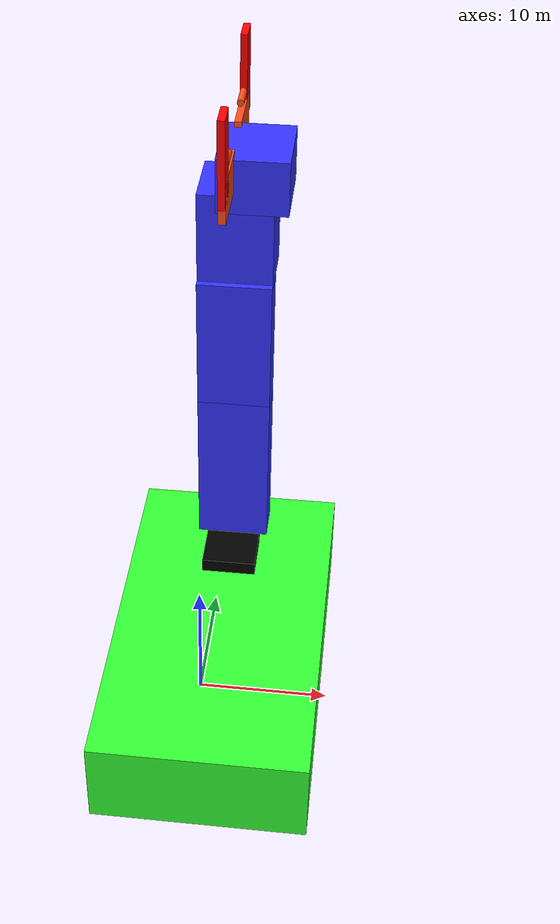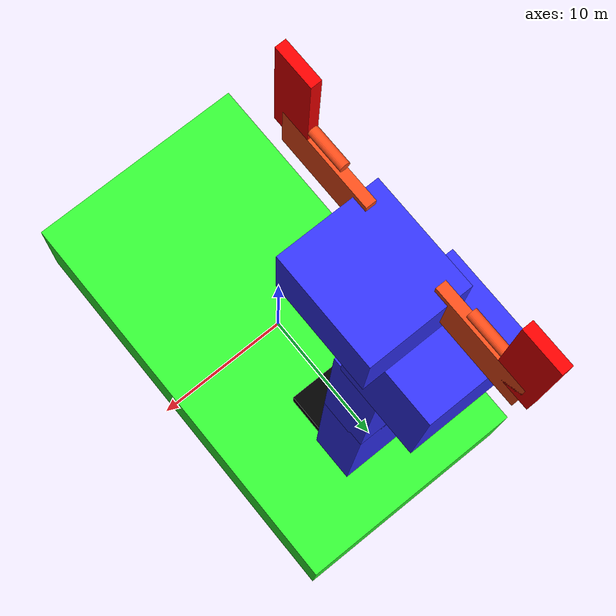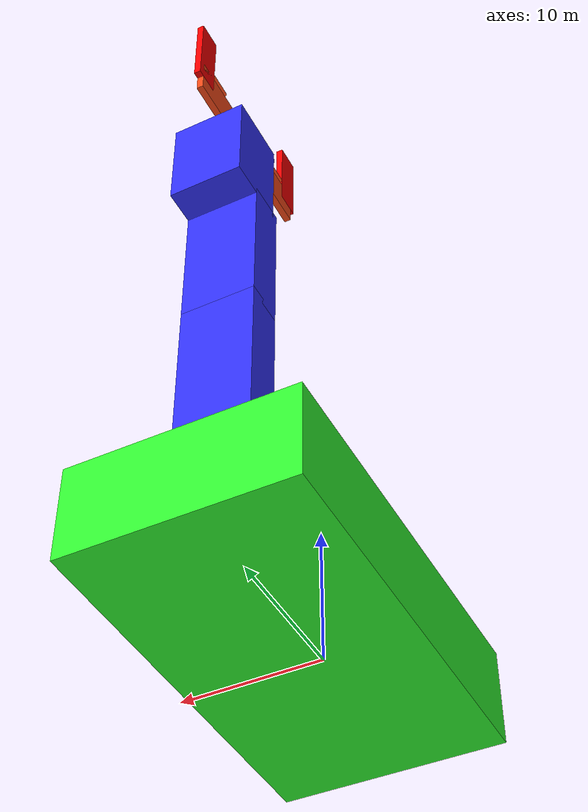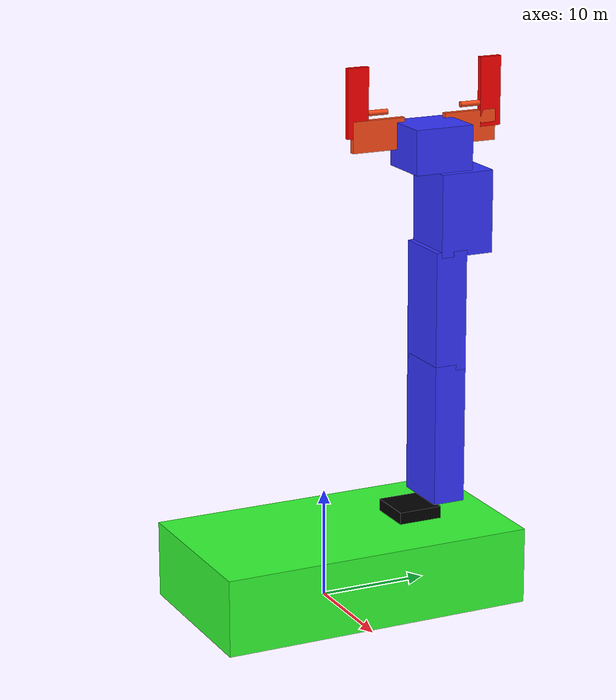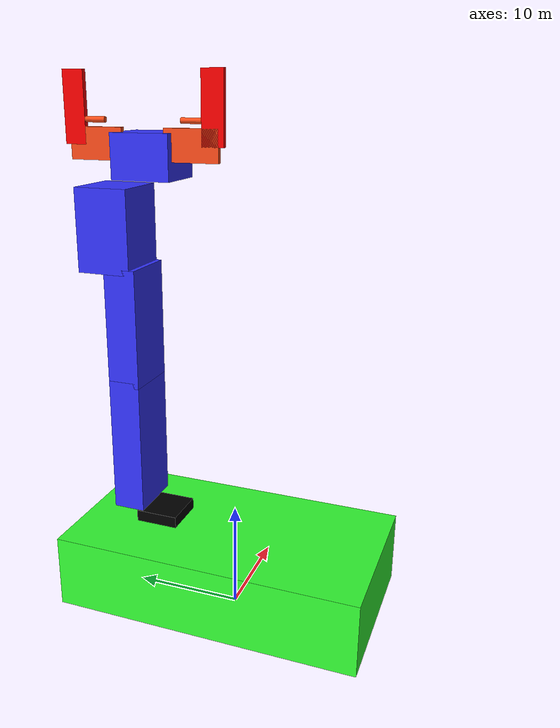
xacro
<?xml version="1.0"?>
<robot xmlns:xacro="http://www.ros.org/wiki/xacro"  name="robot">

    <!-- This will include all the contents of example_include.xacro first. -->
    <xacro:include filename="example_include.xacro" />

    <!-- This first link called "world" is empty -->
    <link name="world"></link>

    <joint name="base_joint" type="fixed">
        <origin xyz="1.5 1.0 0" rpy="0 0 0"/>
        <parent link="world"/>
        <child link="base_link"/>
    </joint>

    <link name="base_link">
        <visual>
            <origin xyz="0 0 3.5" rpy="0 0 0"/>
            <geometry>
                <box size="16 29 7" />
            </geometry>
            <material name="green">
                <color rgba="0.2 1 0.2 1"/>
            </material>
        </visual>
        <collision>
            <origin xyz="0 0 3.5" rpy="0 0 0"/>
            <geometry>
                <box size="16 29 7" />
            </geometry>
        </collision>
        <xacro:inertial_box mass="500" x="16" y="29" z="7">
            <origin xyz="0 0 3.5" rpy="0 0 0"/>
        </xacro:inertial_box>
    </link>

    <joint name="shoulder_pan" type="revolute">
        <origin xyz="0 7 7" rpy="0 0 0"/>
        <parent link="base_link"/>
        <child link="shoulder_link"/>
        <axis xyz="0 0 1"/>
        <limit lower="${-pi/2}" upper="${pi/2}" velocity="100" effort="100"/>
    </joint>

    <link name="shoulder_link">
        <visual>
            <origin xyz="0 0 0" rpy="0 0 0"/>
            <geometry>
                <box size="4.2 4.1 2.2" />
            </geometry>
            <material name="black">
                <color rgba="0 0 0 0.91"/>
            </material>
        </visual>
        <collision>
            <origin xyz="0 0 0" rpy="0 0 0"/>
            <geometry>
                <box size="4.2 4.1 2.2" />
            </geometry>
        </collision>
        <xacro:inertial_box mass="50" x="4.2" y="4.1" z="2.2">
            <origin xyz="0 0 0" rpy="0 0 0"/>
        </xacro:inertial_box>
    </link>

    <joint name="shoulder_lift" type="revolute">
        <origin xyz="0 1.05 1.1" rpy="0 0 0"/>
        <parent link="shoulder_link"/>
        <child link="humerus_link"/>
        <axis xyz="-1 0 0"/>
        <limit lower="${-pi/2}" upper="${pi/2}" velocity="100" effort="100"/>
    </joint>

    <link name="humerus_link">
        <visual>
            <origin xyz="0 1.5 7" rpy="0 0 0"/>
            <geometry>
                <box size="5.5 3 13" />
            </geometry>
            <material name="blue" />
        </visual>
        <collision>
            <origin xyz="0 1.5 7" rpy="0 0 0"/>
            <geometry>
                <box size="5.5 3 13" />
            </geometry>
        </collision>
        <xacro:inertial_box mass="200" x="5.5" y="3" z="13">
            <origin xyz="0 1.5 7" rpy="0 0 0"/>
        </xacro:inertial_box>
    </link>

    <joint name="elbow" type="revolute">
        <origin xyz="0 1.5 13" rpy="0 0 0"/>
        <parent link="humerus_link"/>
        <child link="forearm_link"/>
        <axis xyz="1 0 0"/>
        <limit lower="${-pi/2}" upper="${pi/2}" velocity="100" effort="100"/>
    </joint>

    <link name="forearm_link">
        <visual>
            <origin xyz="0 0 5.5" rpy="0 0 0"/>
            <geometry>
                <box size="5.5 3 11" />
            </geometry>
            <material name="blue" />
        </visual>
        <collision>
            <origin xyz="0 0 5.5" rpy="0 0 0"/>
            <geometry>
                <box size="5.5 3 11" />
            </geometry>
        </collision>
        <xacro:inertial_box mass="200" x="5.5" y="3" z="11">
            <origin xyz="0 0 5.5" rpy="0 0 0"/>
        </xacro:inertial_box>
    </link>

    <joint name="wrist_flex" type="revolute">
        <origin xyz="0 0 11" rpy="0 0 0"/>
        <parent link="forearm_link"/>
        <child link="wrist_link"/>
        <axis xyz="1 0 0"/>
        <limit lower="${-pi/2}" upper="${pi/2}" velocity="100" effort="100"/>
    </joint>

    <link name="wrist_link">
        <visual>
            <origin xyz="0 1.5 3.25" rpy="0 0 0"/>
            <geometry>
                <box size="5.5 5 7.5" />
            </geometry>
            <material name="blue" />
        </visual>
        <collision>
            <origin xyz="0 1.5 3.25" rpy="0 0 0"/>
            <geometry>
                <box size="5.5 5 7.5" />
            </geometry>
        </collision>
        <xacro:inertial_box mass="200" x="5.5" y="5" z="7.5">
            <origin xyz="0 1.5 3.25" rpy="0 0 0"/>
        </xacro:inertial_box>
    </link>

    <joint name="wrist_roll" type="revolute">
        <origin xyz="0 0 7.5" rpy="0 0 0"/>
        <parent link="wrist_link"/>
        <child link="hand_link"/>
        <axis xyz="0 0 1"/>
        <limit effort="100" lower="${-pi/2}" upper="${pi/2}" velocity="1.0"/>
    </joint>

    <link name="hand_link">
        <visual>
            <origin xyz="1.5 -1.5 2" rpy="0 0 0"/>
            <geometry>
                <box size="5 5.5 4" />
            </geometry>
            <material name="blue" />
        </visual>
        <collision>
            <origin xyz="1.5 -1.5 2" rpy="0 0 0"/>
            <geometry>
                <box size="5 5.5 4" />
            </geometry>
        </collision>
        <xacro:inertial_box mass="200" x="5" y="5.5" z="4">
            <origin xyz="1.5 -1.5 2" rpy="0 0 0"/>
        </xacro:inertial_box>
    </link>

    <!-- gripper -->
    <joint name="grip_left" type="revolute">
        <parent link="hand_link"/>
        <child link="grip_left_link"/>
        <origin xyz="0 0 3" rpy="-1.57 0 0"/>
        <axis xyz="-1 0 0"/>
        <limit lower="-1.57" upper="0" effort="1000" velocity="0.5"/>
    </joint>

    <joint name="grip_right" type="revolute">
        <parent link="hand_link"/>
        <child link="grip_right_link"/>
        <origin xyz="0 -3 3" rpy="1.57 0 0"/>
        <axis xyz="-1 0 0"/>
        <limit lower="0" upper="1.57" effort="1000" velocity="0.5"/>
        <mimic joint="grip_left" multiplier="-1"/>
    </joint>

    <link name="grip_left_link">
        <visual>
            <origin xyz="0 0 3" rpy="0 0 0"/>
            <geometry>
                <box size="0.5 -2.8 5" />
            </geometry>
            <material name="orange" />
        </visual>
        <collision>
            <origin xyz="0 0 3" rpy="0 0 0"/>
            <geometry>
                <box size="0.5 -2.8 5" />
            </geometry>
        </collision>
        <xacro:inertial_box mass="1" x="0.5" y="-2.8" z="5">
            <origin xyz="0 0 3" rpy="0 0 0"/>
        </xacro:inertial_box>
    </link>

    <link name="grip_right_link">
        <visual>
            <origin xyz="0 0 3" rpy="0 0 0"/>
            <geometry>
                <box size="0.5 2.8 5" />
            </geometry>
            <material name="orange" />
        </visual>
        <collision>
            <origin xyz="0 0 3" rpy="0 0 0"/>
            <geometry>
                <box size="0.5 2.8 5" />
            </geometry>
        </collision>
        <xacro:inertial_box mass="1" x="0.5" y="2.8" z="5">
            <origin xyz="0 0 3" rpy="0 0 0"/>
        </xacro:inertial_box>
    </link>

    <!-- tendons -->
    <joint name="tendon_left" type="revolute">
        <parent link="hand_link"/>
        <child link="tendon_left_link"/>
        <origin xyz="0 -2 5" rpy="1.57 0 0"/>
        <axis xyz="1 0 0"/>
        <limit lower="-1.57" upper="0" effort="1000" velocity="0.5"/>
        <mimic joint="grip_left"/>
    </joint>

    <joint name="tendon_right" type="revolute">
        <parent link="hand_link"/>
        <child link="tendon_right_link"/>
        <origin xyz="0 -1 5" rpy="-1.57 0 0"/>
        <axis xyz="1 0 0"/>
        <limit lower="0" upper="1.57" effort="1000" velocity="0.5"/>
        <mimic joint="grip_left" multiplier="-1"/>
    </joint>

    <link name="tendon_left_link">
        <visual>
            <origin xyz="0 0 5" rpy="0 0 0"/>
            <geometry>
                <cylinder radius="0.25" length="3.8" />
            </geometry>
            <material name="orange" />
        </visual>
        <collision>
            <origin xyz="0 0 5" rpy="0 0 0"/>
            <geometry>
                <cylinder radius="0.25" length="3.8" />
            </geometry>
        </collision>
        <xacro:inertial_cylinder mass="1" length="3.8" radius="0.25">
            <origin xyz="0 0 5" rpy="0 0 0"/>
        </xacro:inertial_cylinder>
    </link>

    <link name="tendon_right_link">
        <visual>
            <origin xyz="0 0 5" rpy="0 0 0"/>
            <geometry>
                <cylinder radius="0.25" length="3.8" />
            </geometry>
            <material name="orange" />
        </visual>
        <collision>
            <origin xyz="0 0 5" rpy="0 0 0"/>
            <geometry>
                <cylinder radius="0.25" length="3.8" />
            </geometry>
        </collision>
        <xacro:inertial_cylinder mass="1" length="3.8" radius="0.25">
            <origin xyz="0 0 5" rpy="0 0 0"/>
        </xacro:inertial_cylinder>
    </link>

    <!--fingers-->
    <joint name="finger_left" type="revolute">
        <parent link="grip_left_link"/>
        <child link="finger_left_link"/>
        <origin xyz="0 0 5.5" rpy="1.57 0 0"/>
        <axis xyz="-1 0 0"/>
        <limit lower="-1.57" upper="0" effort="1000" velocity="0.5"/>
        <mimic joint="grip_left" multiplier="-1"/>
    </joint>
    <joint name="finger_right" type="revolute">
        <parent link="grip_right_link"/>
        <child link="finger_right_link"/>
        <origin xyz="0 0 5.5" rpy="-1.57 0 0"/>
        <axis xyz="-1 0 0"/>
        <limit lower="0" upper="1.57" effort="1000" velocity="0.5"/>
        <mimic joint="grip_left"/>
    </joint>

    <link name="finger_left_link">
        <visual>
            <origin xyz="0 -0.5 3" rpy="0 0 0"/>
            <geometry>
                <box size="0.5 2 6.2" />
            </geometry>
            <material name="red" />
        </visual>
        <collision>
            <origin xyz="0 -0.5 3" rpy="0 0 0"/>
            <geometry>
                <box size="0.5 2 6.2" />
            </geometry>
        </collision>
        <xacro:inertial_box mass="1" x="0.5" y="2" z="6.2">
            <origin xyz="0 -0.5 3" rpy="0 0 0"/>
        </xacro:inertial_box>
    </link>

    <link name="finger_right_link">
        <visual>
            <origin xyz="0 0.5 3" rpy="0 0 0"/>
            <geometry>
                <box size="0.5 -2 6.2" />
            </geometry>
            <material name="red" />
        </visual>
        <collision>
            <origin xyz="0 0.5 3" rpy="0 0 0"/>
            <geometry>
                <box size="0.5 -2 6.2" />
            </geometry>
        </collision>
        <xacro:inertial_box mass="1" x="0.5" y="-2" z="6.2">
            <origin xyz="0 0.5 3" rpy="0 0 0"/>
        </xacro:inertial_box>
    </link>

</robot>

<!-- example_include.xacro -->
<robot xmlns:xacro="http://www.ros.org/wiki/xacro" >

    <!-- This file is not a robot in and of itself, it just contains some useful tags that could be included in any robot -->

    <!-- Specify some colours -->

    <material name="white">
        <color rgba="1 1 1 1"/>
    </material>

    <material name="orange">
        <color rgba="1 0.3 0.1 1"/>
    </material>

    <material name="blue">
        <color rgba="0.2 0.2 1 1"/>
    </material>

    <material name="black">
        <color rgba="0 0 0 0.91"/>
    </material>

    <material name="red">
        <color rgba="1 0 0 1"/>
    </material>

    <!-- Specify some standard inertial calculations https://en.wikipedia.org/wiki/List_of_moments_of_inertia -->
    <!-- These make use of xacro's mathematical functionality -->

    <xacro:macro name="inertial_sphere" params="mass radius *origin">
        <inertial>
            <xacro:insert_block name="origin"/>
            <mass value="${mass}" />
            <inertia ixx="${(2/5) * mass * (radius*radius)}" ixy="0.0" ixz="0.0"
                    iyy="${(2/5) * mass * (radius*radius)}" iyz="0.0"
                    izz="${(2/5) * mass * (radius*radius)}" />
        </inertial>
    </xacro:macro>

    <xacro:macro name="inertial_box" params="mass x y z *origin">
        <inertial>
            <xacro:insert_block name="origin"/>
            <mass value="${mass}" />
            <inertia ixx="${(1/12) * mass * (y*y+z*z)}" ixy="0.0" ixz="0.0"
                    iyy="${(1/12) * mass * (x*x+z*z)}" iyz="0.0"
                    izz="${(1/12) * mass * (x*x+y*y)}" />
        </inertial>
    </xacro:macro>

    <xacro:macro name="inertial_cylinder" params="mass length radius *origin">
        <inertial>
            <xacro:insert_block name="origin"/>
            <mass value="${mass}" />
            <inertia ixx="${(1/12) * mass * (3*radius*radius + length*length)}" ixy="0.0" ixz="0.0"
                    iyy="${(1/12) * mass * (3*radius*radius + length*length)}" iyz="0.0"
                    izz="${(1/2) * mass * (radius*radius)}" />
        </inertial>
    </xacro:macro>

</robot>
